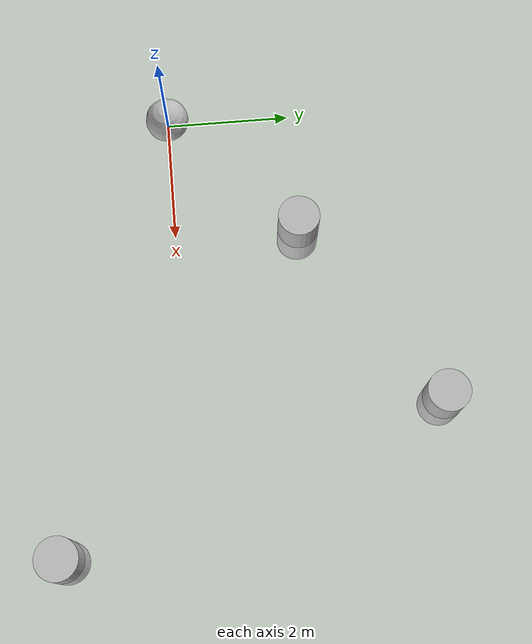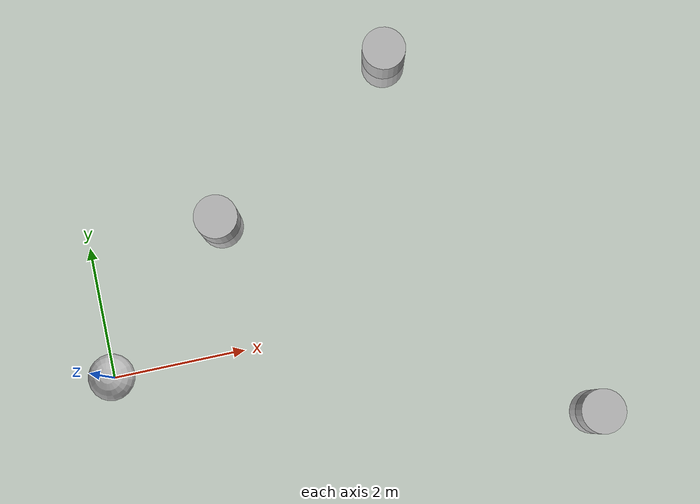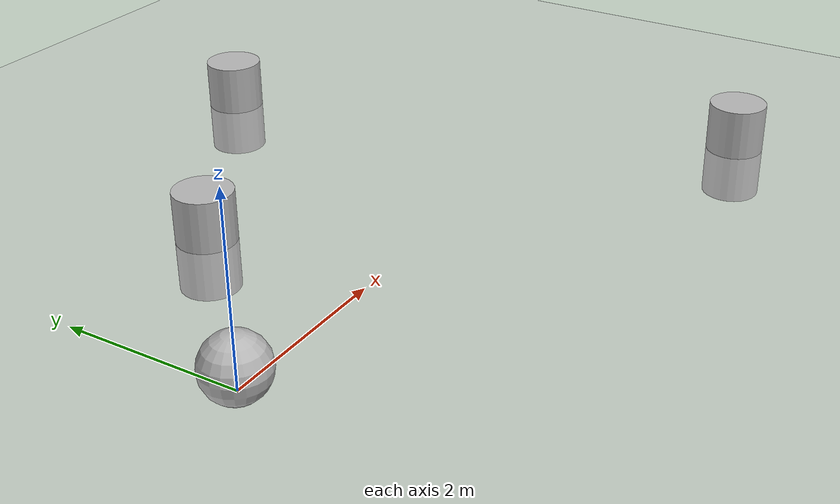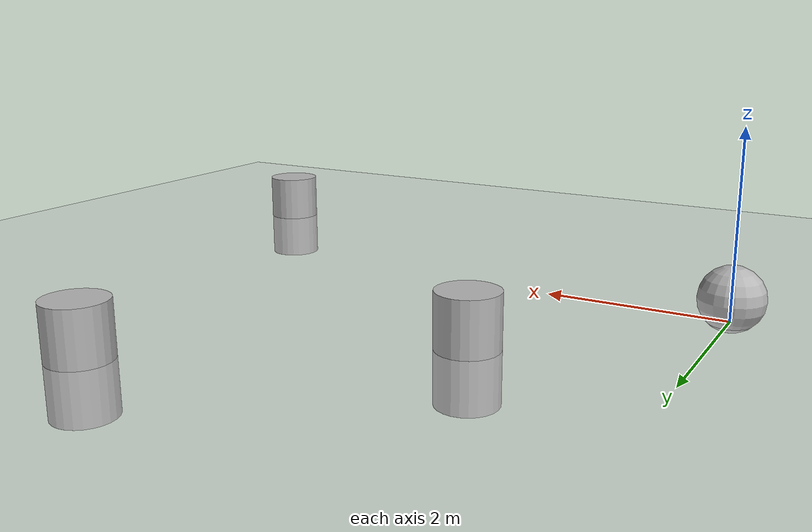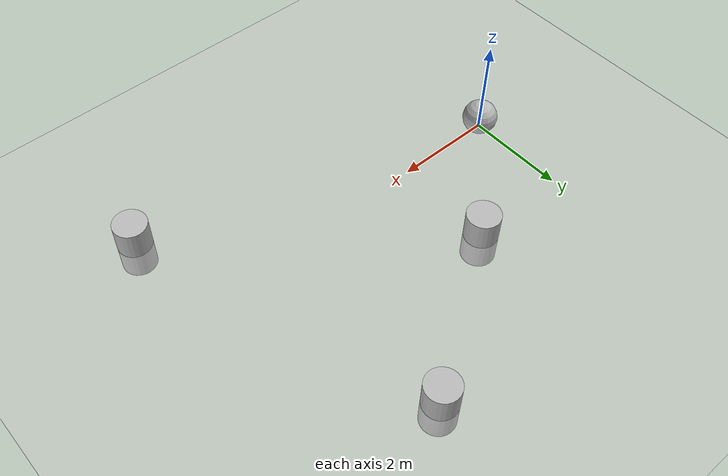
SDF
<?xml version="1.0" ?>
<sdf version="1.4">
  <world name="default">
  <physics type="ode">
    <real_time_update_rate>0.000000</real_time_update_rate>
    <max_step_size>0.001</max_step_size>
  </physics>
    <include>
      <uri>model://ground_plane</uri>
    </include>
    <include>
      <uri>model://sun</uri>
    </include>
    <model name="obs_1">
      <pose>2 2 0 0 0 0</pose>
      <link name="link">
        <collision name="collision">
          <geometry>
		    <cylinder>
			  <radius>0.333</radius>
			  <length>1.15</length>
		    </cylinder>
          </geometry>
        </collision>
        <visual name="visual">
          <geometry>
		    <cylinder>
			  <radius>0.333</radius>
			  <length>1.15</length>
		    </cylinder>
          </geometry>
        </visual>
      </link>
    </model>
    <model name="obs_2">
      <pose>5 4 0 0 0 0</pose>
      <link name="link">
        <collision name="collision">
          <geometry>
		    <cylinder>
			  <radius>0.333</radius>
			  <length>1.15</length>
		    </cylinder>
          </geometry>
        </collision>
        <visual name="visual">
          <geometry>
		    <cylinder>
			  <radius>0.333</radius>
			  <length>1.15</length>>
		    </cylinder>
          </geometry>
        </visual>
      </link>
    </model>
    <model name="obs_3">
      <pose>7 -2 0 0 0 0</pose>
      <link name="link">
        <collision name="collision">
          <geometry>
		    <cylinder>
			  <radius>0.333</radius>
			  <length>1.15</length>
		    </cylinder>
          </geometry>
        </collision>
        <visual name="visual">
          <geometry>
		    <cylinder>
			  <radius>0.333</radius>
			  <length>1.15</length>
		    </cylinder>
          </geometry>
        </visual>
      </link>
    </model>
    <model name="obs_4">
      <pose>7 -2 0 0 0 0</pose>
      <link name="link">
        <collision name="collision">
          <geometry>
		    <cylinder>
			  <radius>0.333</radius>
			  <length>1.15</length>
		    </cylinder>
          </geometry>
        </collision>
        <visual name="visual">
          <geometry>
		    <cylinder>
			  <radius>0.333</radius>
			  <length>1.15</length>
		    </cylinder>
          </geometry>
        </visual>
      </link>
    </model>
    <model name="TCP">
	  <gravity>0</gravity>
      <pose>0 0 0.25 0 0 0</pose>
      <link name="link">
        <collision name="collision">
          <geometry>
			<sphere>
				<radius>0.35</radius>
			</sphere>
          </geometry>
        </collision>
        <visual name="visual">
          <geometry>
			<sphere>
				<radius>0.35</radius>
			</sphere>
          </geometry>
        </visual>
      </link>
    </model>
  </world>
</sdf>
